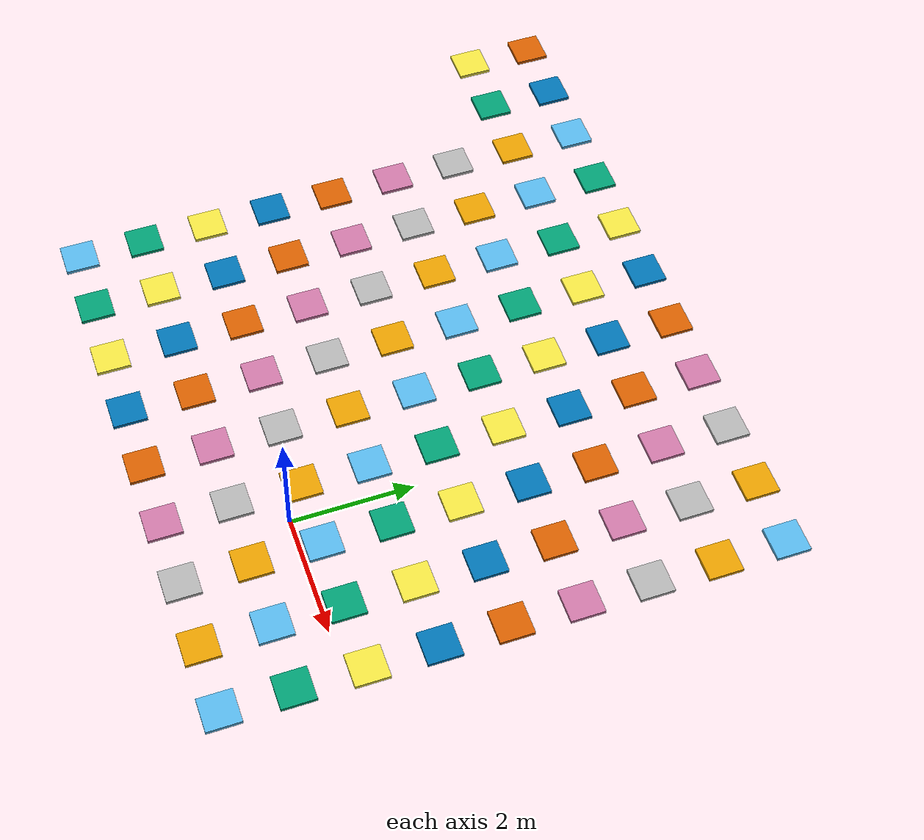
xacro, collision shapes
<?xml version='1.0' encoding='utf-8'?>
<robot xmlns:xacro="http://www.ros.org/wiki/xacro" name="my_awesome_model">
    <xacro:arg name="aruco_dictionary" default="DICT_4X4_100"/>
    <xacro:arg name="aruco_id" default="0"/>
    <xacro:arg name="aruco_name" default="DICT_4X4_100_id0"/>
    <xacro:arg name="aruco_l" default="0.5"/>
    <xacro:arg name="white_border" default="0"/>
    <xacro:include filename="$(find aruco_description)/urdf/general_aruco.xacro"/>
    <xacro:include filename="$(find koghf)/urdf/markers.gazebo.xacro"/>

    <link name="my_awesome_link"/>

    <xacro:generic_aruco aruco_dictionary="$(arg aruco_dictionary)" aruco_id="$(arg aruco_id)" aruco_l="$(arg aruco_l)" aruco_name="$(arg aruco_name)" white_border="$(arg white_border)" connected_to="my_awesome_link">
        <origin xyz="-4 -2 2.5" rpy="0 0 0" />
    </xacro:generic_aruco>
    <xacro:generic_aruco aruco_dictionary="$(arg aruco_dictionary)" aruco_id="1" aruco_l="$(arg aruco_l)" aruco_name="DICT_4X4_100_id1" white_border="$(arg white_border)" connected_to="my_awesome_link">
        <origin xyz="-3 -2 2.5" rpy="0 0 0" />
    </xacro:generic_aruco>
    <xacro:generic_aruco aruco_dictionary="$(arg aruco_dictionary)" aruco_id="2" aruco_l="$(arg aruco_l)" aruco_name="DICT_4X4_100_id2" white_border="$(arg white_border)" connected_to="my_awesome_link">
        <origin xyz="-2 -2 2.5" rpy="0 0 0" />
    </xacro:generic_aruco>
    <xacro:generic_aruco aruco_dictionary="$(arg aruco_dictionary)" aruco_id="3" aruco_l="$(arg aruco_l)" aruco_name="DICT_4X4_100_id3" white_border="$(arg white_border)" connected_to="my_awesome_link">
        <origin xyz="-1 -2 2.5" rpy="0 0 0" />
    </xacro:generic_aruco>
    <xacro:generic_aruco aruco_dictionary="$(arg aruco_dictionary)" aruco_id="4" aruco_l="$(arg aruco_l)" aruco_name="DICT_4X4_100_id4" white_border="$(arg white_border)" connected_to="my_awesome_link">
        <origin xyz="0 -2 2.5" rpy="0 0 0" />
    </xacro:generic_aruco>
    <xacro:generic_aruco aruco_dictionary="$(arg aruco_dictionary)" aruco_id="5" aruco_l="$(arg aruco_l)" aruco_name="DICT_4X4_100_id5" white_border="$(arg white_border)" connected_to="my_awesome_link">
        <origin xyz="1 -2 2.5" rpy="0 0 0" />
    </xacro:generic_aruco>
    <xacro:generic_aruco aruco_dictionary="$(arg aruco_dictionary)" aruco_id="6" aruco_l="$(arg aruco_l)" aruco_name="DICT_4X4_100_id6" white_border="$(arg white_border)" connected_to="my_awesome_link">
        <origin xyz="2 -2 2.5" rpy="0 0 0" />
    </xacro:generic_aruco>
    <xacro:generic_aruco aruco_dictionary="$(arg aruco_dictionary)" aruco_id="7" aruco_l="$(arg aruco_l)" aruco_name="DICT_4X4_100_id7" white_border="$(arg white_border)" connected_to="my_awesome_link">
        <origin xyz="3 -2 2.5" rpy="0 0 0" />
    </xacro:generic_aruco>
    <xacro:generic_aruco aruco_dictionary="$(arg aruco_dictionary)" aruco_id="8" aruco_l="$(arg aruco_l)" aruco_name="DICT_4X4_100_id8" white_border="$(arg white_border)" connected_to="my_awesome_link">
        <origin xyz="4 -2 2.5" rpy="0 0 0" />
    </xacro:generic_aruco>

    <xacro:generic_aruco aruco_dictionary="$(arg aruco_dictionary)" aruco_id="9" aruco_l="$(arg aruco_l)" aruco_name="DICT_4X4_100_id9" white_border="$(arg white_border)" connected_to="my_awesome_link">
        <origin xyz="-4 -1 2.5" rpy="0 0 0" />
    </xacro:generic_aruco>
    <xacro:generic_aruco aruco_dictionary="$(arg aruco_dictionary)" aruco_id="10" aruco_l="$(arg aruco_l)" aruco_name="DICT_4X4_100_id10" white_border="$(arg white_border)" connected_to="my_awesome_link">
        <origin xyz="-3 -1 2.5" rpy="0 0 0" />
    </xacro:generic_aruco>
    <xacro:generic_aruco aruco_dictionary="$(arg aruco_dictionary)" aruco_id="11" aruco_l="$(arg aruco_l)" aruco_name="DICT_4X4_100_id11" white_border="$(arg white_border)" connected_to="my_awesome_link">
        <origin xyz="-2 -1 2.5" rpy="0 0 0" />
    </xacro:generic_aruco>
    <xacro:generic_aruco aruco_dictionary="$(arg aruco_dictionary)" aruco_id="12" aruco_l="$(arg aruco_l)" aruco_name="DICT_4X4_100_id12" white_border="$(arg white_border)" connected_to="my_awesome_link">
        <origin xyz="-1 -1 2.5" rpy="0 0 0" />
    </xacro:generic_aruco>
    <xacro:generic_aruco aruco_dictionary="$(arg aruco_dictionary)" aruco_id="13" aruco_l="$(arg aruco_l)" aruco_name="DICT_4X4_100_id13" white_border="$(arg white_border)" connected_to="my_awesome_link">
        <origin xyz="0 -1 2.5" rpy="0 0 0" />
    </xacro:generic_aruco>
    <xacro:generic_aruco aruco_dictionary="$(arg aruco_dictionary)" aruco_id="14" aruco_l="$(arg aruco_l)" aruco_name="DICT_4X4_100_id14" white_border="$(arg white_border)" connected_to="my_awesome_link">
        <origin xyz="1 -1 2.5" rpy="0 0 0" />
    </xacro:generic_aruco>
    <xacro:generic_aruco aruco_dictionary="$(arg aruco_dictionary)" aruco_id="15" aruco_l="$(arg aruco_l)" aruco_name="DICT_4X4_100_id15" white_border="$(arg white_border)" connected_to="my_awesome_link">
        <origin xyz="2 -1 2.5" rpy="0 0 0" />
    </xacro:generic_aruco>
    <xacro:generic_aruco aruco_dictionary="$(arg aruco_dictionary)" aruco_id="16" aruco_l="$(arg aruco_l)" aruco_name="DICT_4X4_100_id16" white_border="$(arg white_border)" connected_to="my_awesome_link">
        <origin xyz="3 -1 2.5" rpy="0 0 0" />
    </xacro:generic_aruco>
    <xacro:generic_aruco aruco_dictionary="$(arg aruco_dictionary)" aruco_id="17" aruco_l="$(arg aruco_l)" aruco_name="DICT_4X4_100_id17" white_border="$(arg white_border)" connected_to="my_awesome_link">
        <origin xyz="4 -1 2.5" rpy="0 0 0" />
    </xacro:generic_aruco>

    <xacro:generic_aruco aruco_dictionary="$(arg aruco_dictionary)" aruco_id="18" aruco_l="$(arg aruco_l)" aruco_name="DICT_4X4_100_id18" white_border="$(arg white_border)" connected_to="my_awesome_link">
        <origin xyz="-4 0 2.5" rpy="0 0 0" />
    </xacro:generic_aruco>
    <xacro:generic_aruco aruco_dictionary="$(arg aruco_dictionary)" aruco_id="19" aruco_l="$(arg aruco_l)" aruco_name="DICT_4X4_100_id19" white_border="$(arg white_border)" connected_to="my_awesome_link">
        <origin xyz="-3 0 2.5" rpy="0 0 0" />
    </xacro:generic_aruco>
    <xacro:generic_aruco aruco_dictionary="$(arg aruco_dictionary)" aruco_id="20" aruco_l="$(arg aruco_l)" aruco_name="DICT_4X4_100_id20" white_border="$(arg white_border)" connected_to="my_awesome_link">
        <origin xyz="-2 0 2.5" rpy="0 0 0" />
    </xacro:generic_aruco>
    <xacro:generic_aruco aruco_dictionary="$(arg aruco_dictionary)" aruco_id="21" aruco_l="$(arg aruco_l)" aruco_name="DICT_4X4_100_id21" white_border="$(arg white_border)" connected_to="my_awesome_link">
        <origin xyz="-1 0 2.5" rpy="0 0 0" />
    </xacro:generic_aruco>
    <xacro:generic_aruco aruco_dictionary="$(arg aruco_dictionary)" aruco_id="22" aruco_l="$(arg aruco_l)" aruco_name="DICT_4X4_100_id22" white_border="$(arg white_border)" connected_to="my_awesome_link">
        <origin xyz="0 0 2.5" rpy="0 0 0" />
    </xacro:generic_aruco>
    <xacro:generic_aruco aruco_dictionary="$(arg aruco_dictionary)" aruco_id="23" aruco_l="$(arg aruco_l)" aruco_name="DICT_4X4_100_id23" white_border="$(arg white_border)" connected_to="my_awesome_link">
        <origin xyz="1 0 2.5" rpy="0 0 0" />
    </xacro:generic_aruco>
    <xacro:generic_aruco aruco_dictionary="$(arg aruco_dictionary)" aruco_id="24" aruco_l="$(arg aruco_l)" aruco_name="DICT_4X4_100_id24" white_border="$(arg white_border)" connected_to="my_awesome_link">
        <origin xyz="2 0 2.5" rpy="0 0 0" />
    </xacro:generic_aruco>
    <xacro:generic_aruco aruco_dictionary="$(arg aruco_dictionary)" aruco_id="25" aruco_l="$(arg aruco_l)" aruco_name="DICT_4X4_100_id25" white_border="$(arg white_border)" connected_to="my_awesome_link">
        <origin xyz="3 0 2.5" rpy="0 0 0" />
    </xacro:generic_aruco>
    <xacro:generic_aruco aruco_dictionary="$(arg aruco_dictionary)" aruco_id="26" aruco_l="$(arg aruco_l)" aruco_name="DICT_4X4_100_id26" white_border="$(arg white_border)" connected_to="my_awesome_link">
        <origin xyz="4 0 2.5" rpy="0 0 0" />
    </xacro:generic_aruco>

    <xacro:generic_aruco aruco_dictionary="$(arg aruco_dictionary)" aruco_id="27" aruco_l="$(arg aruco_l)" aruco_name="DICT_4X4_100_id27" white_border="$(arg white_border)" connected_to="my_awesome_link">
        <origin xyz="-4 1 2.5" rpy="0 0 0" />
    </xacro:generic_aruco>
    <xacro:generic_aruco aruco_dictionary="$(arg aruco_dictionary)" aruco_id="28" aruco_l="$(arg aruco_l)" aruco_name="DICT_4X4_100_id28" white_border="$(arg white_border)" connected_to="my_awesome_link">
        <origin xyz="-3 1 2.5" rpy="0 0 0" />
    </xacro:generic_aruco>
    <xacro:generic_aruco aruco_dictionary="$(arg aruco_dictionary)" aruco_id="29" aruco_l="$(arg aruco_l)" aruco_name="DICT_4X4_100_id29" white_border="$(arg white_border)" connected_to="my_awesome_link">
        <origin xyz="-2 1 2.5" rpy="0 0 0" />
    </xacro:generic_aruco>
    <xacro:generic_aruco aruco_dictionary="$(arg aruco_dictionary)" aruco_id="30" aruco_l="$(arg aruco_l)" aruco_name="DICT_4X4_100_id30" white_border="$(arg white_border)" connected_to="my_awesome_link">
        <origin xyz="-1 1 2.5" rpy="0 0 0" />
    </xacro:generic_aruco>
    <xacro:generic_aruco aruco_dictionary="$(arg aruco_dictionary)" aruco_id="31" aruco_l="$(arg aruco_l)" aruco_name="DICT_4X4_100_id31" white_border="$(arg white_border)" connected_to="my_awesome_link">
        <origin xyz="0 1 2.5" rpy="0 0 0" />
    </xacro:generic_aruco>
    <xacro:generic_aruco aruco_dictionary="$(arg aruco_dictionary)" aruco_id="32" aruco_l="$(arg aruco_l)" aruco_name="DICT_4X4_100_id32" white_border="$(arg white_border)" connected_to="my_awesome_link">
        <origin xyz="1 1 2.5" rpy="0 0 0" />
    </xacro:generic_aruco>
    <xacro:generic_aruco aruco_dictionary="$(arg aruco_dictionary)" aruco_id="33" aruco_l="$(arg aruco_l)" aruco_name="DICT_4X4_100_id33" white_border="$(arg white_border)" connected_to="my_awesome_link">
        <origin xyz="2 1 2.5" rpy="0 0 0" />
    </xacro:generic_aruco>
    <xacro:generic_aruco aruco_dictionary="$(arg aruco_dictionary)" aruco_id="34" aruco_l="$(arg aruco_l)" aruco_name="DICT_4X4_100_id34" white_border="$(arg white_border)" connected_to="my_awesome_link">
        <origin xyz="3 1 2.5" rpy="0 0 0" />
    </xacro:generic_aruco>
    <xacro:generic_aruco aruco_dictionary="$(arg aruco_dictionary)" aruco_id="35" aruco_l="$(arg aruco_l)" aruco_name="DICT_4X4_100_id35" white_border="$(arg white_border)" connected_to="my_awesome_link">
        <origin xyz="4 1 2.5" rpy="0 0 0" />
    </xacro:generic_aruco>

    <xacro:generic_aruco aruco_dictionary="$(arg aruco_dictionary)" aruco_id="36" aruco_l="$(arg aruco_l)" aruco_name="DICT_4X4_100_id36" white_border="$(arg white_border)" connected_to="my_awesome_link">
        <origin xyz="-4 2 2.5" rpy="0 0 0" />
    </xacro:generic_aruco>
    <xacro:generic_aruco aruco_dictionary="$(arg aruco_dictionary)" aruco_id="37" aruco_l="$(arg aruco_l)" aruco_name="DICT_4X4_100_id37" white_border="$(arg white_border)" connected_to="my_awesome_link">
        <origin xyz="-3 2 2.5" rpy="0 0 0" />
    </xacro:generic_aruco>
    <xacro:generic_aruco aruco_dictionary="$(arg aruco_dictionary)" aruco_id="38" aruco_l="$(arg aruco_l)" aruco_name="DICT_4X4_100_id38" white_border="$(arg white_border)" connected_to="my_awesome_link">
        <origin xyz="-2 2 2.5" rpy="0 0 0" />
    </xacro:generic_aruco>
    <xacro:generic_aruco aruco_dictionary="$(arg aruco_dictionary)" aruco_id="39" aruco_l="$(arg aruco_l)" aruco_name="DICT_4X4_100_id39" white_border="$(arg white_border)" connected_to="my_awesome_link">
        <origin xyz="-1 2 2.5" rpy="0 0 0" />
    </xacro:generic_aruco>
    <xacro:generic_aruco aruco_dictionary="$(arg aruco_dictionary)" aruco_id="40" aruco_l="$(arg aruco_l)" aruco_name="DICT_4X4_100_id40" white_border="$(arg white_border)" connected_to="my_awesome_link">
        <origin xyz="0 2 2.5" rpy="0 0 0" />
    </xacro:generic_aruco>
    <xacro:generic_aruco aruco_dictionary="$(arg aruco_dictionary)" aruco_id="41" aruco_l="$(arg aruco_l)" aruco_name="DICT_4X4_100_id41" white_border="$(arg white_border)" connected_to="my_awesome_link">
        <origin xyz="1 2 2.5" rpy="0 0 0" />
    </xacro:generic_aruco>
    <xacro:generic_aruco aruco_dictionary="$(arg aruco_dictionary)" aruco_id="42" aruco_l="$(arg aruco_l)" aruco_name="DICT_4X4_100_id42" white_border="$(arg white_border)" connected_to="my_awesome_link">
        <origin xyz="2 2 2.5" rpy="0 0 0" />
    </xacro:generic_aruco>
    <xacro:generic_aruco aruco_dictionary="$(arg aruco_dictionary)" aruco_id="43" aruco_l="$(arg aruco_l)" aruco_name="DICT_4X4_100_id43" white_border="$(arg white_border)" connected_to="my_awesome_link">
        <origin xyz="3 2 2.5" rpy="0 0 0" />
    </xacro:generic_aruco>
    <xacro:generic_aruco aruco_dictionary="$(arg aruco_dictionary)" aruco_id="44" aruco_l="$(arg aruco_l)" aruco_name="DICT_4X4_100_id44" white_border="$(arg white_border)" connected_to="my_awesome_link">
        <origin xyz="4 2 2.5" rpy="0 0 0" />
    </xacro:generic_aruco>

    <xacro:generic_aruco aruco_dictionary="$(arg aruco_dictionary)" aruco_id="45" aruco_l="$(arg aruco_l)" aruco_name="DICT_4X4_100_id45" white_border="$(arg white_border)" connected_to="my_awesome_link">
        <origin xyz="-4 3 2.5" rpy="0 0 0" />
    </xacro:generic_aruco>
    <xacro:generic_aruco aruco_dictionary="$(arg aruco_dictionary)" aruco_id="46" aruco_l="$(arg aruco_l)" aruco_name="DICT_4X4_100_id46" white_border="$(arg white_border)" connected_to="my_awesome_link">
        <origin xyz="-3 3 2.5" rpy="0 0 0" />
    </xacro:generic_aruco>
    <xacro:generic_aruco aruco_dictionary="$(arg aruco_dictionary)" aruco_id="47" aruco_l="$(arg aruco_l)" aruco_name="DICT_4X4_100_id47" white_border="$(arg white_border)" connected_to="my_awesome_link">
        <origin xyz="-2 3 2.5" rpy="0 0 0" />
    </xacro:generic_aruco>
    <xacro:generic_aruco aruco_dictionary="$(arg aruco_dictionary)" aruco_id="48" aruco_l="$(arg aruco_l)" aruco_name="DICT_4X4_100_id48" white_border="$(arg white_border)" connected_to="my_awesome_link">
        <origin xyz="-1 3 2.5" rpy="0 0 0" />
    </xacro:generic_aruco>
    <xacro:generic_aruco aruco_dictionary="$(arg aruco_dictionary)" aruco_id="49" aruco_l="$(arg aruco_l)" aruco_name="DICT_4X4_100_id49" white_border="$(arg white_border)" connected_to="my_awesome_link">
        <origin xyz="0 3 2.5" rpy="0 0 0" />
    </xacro:generic_aruco>
    <xacro:generic_aruco aruco_dictionary="$(arg aruco_dictionary)" aruco_id="50" aruco_l="$(arg aruco_l)" aruco_name="DICT_4X4_100_id50" white_border="$(arg white_border)" connected_to="my_awesome_link">
        <origin xyz="1 3 2.5" rpy="0 0 0" />
    </xacro:generic_aruco>
    <xacro:generic_aruco aruco_dictionary="$(arg aruco_dictionary)" aruco_id="51" aruco_l="$(arg aruco_l)" aruco_name="DICT_4X4_100_id51" white_border="$(arg white_border)" connected_to="my_awesome_link">
        <origin xyz="2 3 2.5" rpy="0 0 0" />
    </xacro:generic_aruco>
    <xacro:generic_aruco aruco_dictionary="$(arg aruco_dictionary)" aruco_id="52" aruco_l="$(arg aruco_l)" aruco_name="DICT_4X4_100_id52" white_border="$(arg white_border)" connected_to="my_awesome_link">
        <origin xyz="3 3 2.5" rpy="0 0 0" />
    </xacro:generic_aruco>
    <xacro:generic_aruco aruco_dictionary="$(arg aruco_dictionary)" aruco_id="53" aruco_l="$(arg aruco_l)" aruco_name="DICT_4X4_100_id53" white_border="$(arg white_border)" connected_to="my_awesome_link">
        <origin xyz="4 3 2.5" rpy="0 0 0" />
    </xacro:generic_aruco>

    <xacro:generic_aruco aruco_dictionary="$(arg aruco_dictionary)" aruco_id="54" aruco_l="$(arg aruco_l)" aruco_name="DICT_4X4_100_id54" white_border="$(arg white_border)" connected_to="my_awesome_link">
        <origin xyz="-4 4 2.5" rpy="0 0 0" />
    </xacro:generic_aruco>
    <xacro:generic_aruco aruco_dictionary="$(arg aruco_dictionary)" aruco_id="55" aruco_l="$(arg aruco_l)" aruco_name="DICT_4X4_100_id55" white_border="$(arg white_border)" connected_to="my_awesome_link">
        <origin xyz="-3 4 2.5" rpy="0 0 0" />
    </xacro:generic_aruco>
    <xacro:generic_aruco aruco_dictionary="$(arg aruco_dictionary)" aruco_id="56" aruco_l="$(arg aruco_l)" aruco_name="DICT_4X4_100_id56" white_border="$(arg white_border)" connected_to="my_awesome_link">
        <origin xyz="-2 4 2.5" rpy="0 0 0" />
    </xacro:generic_aruco>
    <xacro:generic_aruco aruco_dictionary="$(arg aruco_dictionary)" aruco_id="57" aruco_l="$(arg aruco_l)" aruco_name="DICT_4X4_100_id57" white_border="$(arg white_border)" connected_to="my_awesome_link">
        <origin xyz="-1 4 2.5" rpy="0 0 0" />
    </xacro:generic_aruco>
    <xacro:generic_aruco aruco_dictionary="$(arg aruco_dictionary)" aruco_id="58" aruco_l="$(arg aruco_l)" aruco_name="DICT_4X4_100_id58" white_border="$(arg white_border)" connected_to="my_awesome_link">
        <origin xyz="0 4 2.5" rpy="0 0 0" />
    </xacro:generic_aruco>
    <xacro:generic_aruco aruco_dictionary="$(arg aruco_dictionary)" aruco_id="59" aruco_l="$(arg aruco_l)" aruco_name="DICT_4X4_100_id59" white_border="$(arg white_border)" connected_to="my_awesome_link">
        <origin xyz="1 4 2.5" rpy="0 0 0" />
    </xacro:generic_aruco>
    <xacro:generic_aruco aruco_dictionary="$(arg aruco_dictionary)" aruco_id="60" aruco_l="$(arg aruco_l)" aruco_name="DICT_4X4_100_id60" white_border="$(arg white_border)" connected_to="my_awesome_link">
        <origin xyz="2 4 2.5" rpy="0 0 0" />
    </xacro:generic_aruco>
    <xacro:generic_aruco aruco_dictionary="$(arg aruco_dictionary)" aruco_id="61" aruco_l="$(arg aruco_l)" aruco_name="DICT_4X4_100_id61" white_border="$(arg white_border)" connected_to="my_awesome_link">
        <origin xyz="3 4 2.5" rpy="0 0 0" />
    </xacro:generic_aruco>
    <xacro:generic_aruco aruco_dictionary="$(arg aruco_dictionary)" aruco_id="62" aruco_l="$(arg aruco_l)" aruco_name="DICT_4X4_100_id62" white_border="$(arg white_border)" connected_to="my_awesome_link">
        <origin xyz="4 4 2.5" rpy="0 0 0" />
    </xacro:generic_aruco>

    <xacro:generic_aruco aruco_dictionary="$(arg aruco_dictionary)" aruco_id="63" aruco_l="$(arg aruco_l)" aruco_name="DICT_4X4_100_id63" white_border="$(arg white_border)" connected_to="my_awesome_link">
        <origin xyz="-4 5 2.5" rpy="0 0 0" />
    </xacro:generic_aruco>
    <xacro:generic_aruco aruco_dictionary="$(arg aruco_dictionary)" aruco_id="64" aruco_l="$(arg aruco_l)" aruco_name="DICT_4X4_100_id64" white_border="$(arg white_border)" connected_to="my_awesome_link">
        <origin xyz="-3 5 2.5" rpy="0 0 0" />
    </xacro:generic_aruco>
    <xacro:generic_aruco aruco_dictionary="$(arg aruco_dictionary)" aruco_id="65" aruco_l="$(arg aruco_l)" aruco_name="DICT_4X4_100_id65" white_border="$(arg white_border)" connected_to="my_awesome_link">
        <origin xyz="-2 5 2.5" rpy="0 0 0" />
    </xacro:generic_aruco>
    <xacro:generic_aruco aruco_dictionary="$(arg aruco_dictionary)" aruco_id="66" aruco_l="$(arg aruco_l)" aruco_name="DICT_4X4_100_id66" white_border="$(arg white_border)" connected_to="my_awesome_link">
        <origin xyz="-1 5 2.5" rpy="0 0 0" />
    </xacro:generic_aruco>
    <xacro:generic_aruco aruco_dictionary="$(arg aruco_dictionary)" aruco_id="67" aruco_l="$(arg aruco_l)" aruco_name="DICT_4X4_100_id67" white_border="$(arg white_border)" connected_to="my_awesome_link">
        <origin xyz="0 5 2.5" rpy="0 0 0" />
    </xacro:generic_aruco>
    <xacro:generic_aruco aruco_dictionary="$(arg aruco_dictionary)" aruco_id="68" aruco_l="$(arg aruco_l)" aruco_name="DICT_4X4_100_id68" white_border="$(arg white_border)" connected_to="my_awesome_link">
        <origin xyz="1 5 2.5" rpy="0 0 0" />
    </xacro:generic_aruco>
    <xacro:generic_aruco aruco_dictionary="$(arg aruco_dictionary)" aruco_id="69" aruco_l="$(arg aruco_l)" aruco_name="DICT_4X4_100_id69" white_border="$(arg white_border)" connected_to="my_awesome_link">
        <origin xyz="2 5 2.5" rpy="0 0 0" />
    </xacro:generic_aruco>
    <xacro:generic_aruco aruco_dictionary="$(arg aruco_dictionary)" aruco_id="70" aruco_l="$(arg aruco_l)" aruco_name="DICT_4X4_100_id70" white_border="$(arg white_border)" connected_to="my_awesome_link">
        <origin xyz="3 5 2.5" rpy="0 0 0" />
    </xacro:generic_aruco>
    <xacro:generic_aruco aruco_dictionary="$(arg aruco_dictionary)" aruco_id="71" aruco_l="$(arg aruco_l)" aruco_name="DICT_4X4_100_id71" white_border="$(arg white_border)" connected_to="my_awesome_link">
        <origin xyz="4 5 2.5" rpy="0 0 0" />
    </xacro:generic_aruco>

    <xacro:generic_aruco aruco_dictionary="$(arg aruco_dictionary)" aruco_id="72" aruco_l="$(arg aruco_l)" aruco_name="DICT_4X4_100_id72" white_border="$(arg white_border)" connected_to="my_awesome_link">
        <origin xyz="-4 6 2.5" rpy="0 0 0" />
    </xacro:generic_aruco>
    <xacro:generic_aruco aruco_dictionary="$(arg aruco_dictionary)" aruco_id="73" aruco_l="$(arg aruco_l)" aruco_name="DICT_4X4_100_id73" white_border="$(arg white_border)" connected_to="my_awesome_link">
        <origin xyz="-3 6 2.5" rpy="0 0 0" />
    </xacro:generic_aruco>
    <xacro:generic_aruco aruco_dictionary="$(arg aruco_dictionary)" aruco_id="74" aruco_l="$(arg aruco_l)" aruco_name="DICT_4X4_100_id74" white_border="$(arg white_border)" connected_to="my_awesome_link">
        <origin xyz="-2 6 2.5" rpy="0 0 0" />
    </xacro:generic_aruco>
    <xacro:generic_aruco aruco_dictionary="$(arg aruco_dictionary)" aruco_id="75" aruco_l="$(arg aruco_l)" aruco_name="DICT_4X4_100_id75" white_border="$(arg white_border)" connected_to="my_awesome_link">
        <origin xyz="-1 6 2.5" rpy="0 0 0" />
    </xacro:generic_aruco>
    <xacro:generic_aruco aruco_dictionary="$(arg aruco_dictionary)" aruco_id="76" aruco_l="$(arg aruco_l)" aruco_name="DICT_4X4_100_id76" white_border="$(arg white_border)" connected_to="my_awesome_link">
        <origin xyz="0 6 2.5" rpy="0 0 0" />
    </xacro:generic_aruco>
    <xacro:generic_aruco aruco_dictionary="$(arg aruco_dictionary)" aruco_id="77" aruco_l="$(arg aruco_l)" aruco_name="DICT_4X4_100_id77" white_border="$(arg white_border)" connected_to="my_awesome_link">
        <origin xyz="1 6 2.5" rpy="0 0 0" />
    </xacro:generic_aruco>
    <xacro:generic_aruco aruco_dictionary="$(arg aruco_dictionary)" aruco_id="78" aruco_l="$(arg aruco_l)" aruco_name="DICT_4X4_100_id78" white_border="$(arg white_border)" connected_to="my_awesome_link">
        <origin xyz="2 6 2.5" rpy="0 0 0" />
    </xacro:generic_aruco>
    <xacro:generic_aruco aruco_dictionary="$(arg aruco_dictionary)" aruco_id="79" aruco_l="$(arg aruco_l)" aruco_name="DICT_4X4_100_id79" white_border="$(arg white_border)" connected_to="my_awesome_link">
        <origin xyz="3 6 2.5" rpy="0 0 0" />
    </xacro:generic_aruco>
    <xacro:generic_aruco aruco_dictionary="$(arg aruco_dictionary)" aruco_id="80" aruco_l="$(arg aruco_l)" aruco_name="DICT_4X4_100_id80" white_border="$(arg white_border)" connected_to="my_awesome_link">
        <origin xyz="4 6 2.5" rpy="0 0 0" />
    </xacro:generic_aruco>

    <xacro:generic_aruco aruco_dictionary="$(arg aruco_dictionary)" aruco_id="81" aruco_l="$(arg aruco_l)" aruco_name="DICT_4X4_100_id81" white_border="$(arg white_border)" connected_to="my_awesome_link">
        <origin xyz="-5 5 2.5" rpy="0 0 0" />
    </xacro:generic_aruco>
    <xacro:generic_aruco aruco_dictionary="$(arg aruco_dictionary)" aruco_id="82" aruco_l="$(arg aruco_l)" aruco_name="DICT_4X4_100_id82" white_border="$(arg white_border)" connected_to="my_awesome_link">
        <origin xyz="-6 5 2.5" rpy="0 0 0" />
    </xacro:generic_aruco>
    <xacro:generic_aruco aruco_dictionary="$(arg aruco_dictionary)" aruco_id="83" aruco_l="$(arg aruco_l)" aruco_name="DICT_4X4_100_id83" white_border="$(arg white_border)" connected_to="my_awesome_link">
        <origin xyz="-5 6 2.5" rpy="0 0 0" />
    </xacro:generic_aruco>
    <xacro:generic_aruco aruco_dictionary="$(arg aruco_dictionary)" aruco_id="84" aruco_l="$(arg aruco_l)" aruco_name="DICT_4X4_100_id84" white_border="$(arg white_border)" connected_to="my_awesome_link">
        <origin xyz="-6 6 2.5" rpy="0 0 0" />
    </xacro:generic_aruco>

</robot>

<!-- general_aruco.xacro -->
<robot xmlns:xacro="http://www.ros.org/wiki/xacro" name="generic_aruco">
  <!-- connected_to: if given the model will be connected to it -->
  <!-- aruco_l: is the x and y dimension of the black core of the code -->
  <!-- aruco_name: The link are called after this name e.g.: ${aruco_name}_link_0. -->
  <!-- 2*white_border: dimension of the white border around the marker in %. -->
  <xacro:macro name="generic_aruco" params="connected_to:='' aruco_name aruco_dictionary aruco_id aruco_l white_border *origin">
    <!-- HardwareInterface:='EffortJointInterface' -->
    <xacro:unless value="${not connected_to}">
      <joint name="${aruco_name}_joint_${connected_to}" type="fixed">
        <parent link="${connected_to}"/>
        <child link="${aruco_name}_link_0"/>
        <xacro:insert_block name="origin"/>
      </joint>
    </xacro:unless>

    <!-- LINK 0 -->
    <link name="${aruco_name}_link_0">
      <inertial>
        <origin xyz="0 0 0" rpy="0 0 0"/>
        <mass value="1.0" />
        <inertia ixx="0.0741666666667" ixy="0.0" ixz="0.0" iyy="0.0585416666667" iyz="0.0" izz="0.0260416666667"/>
      </inertial>
      <collision>
        <origin xyz="0 0 0" rpy="0 0 0"/>
        <geometry>
          <box size="${aruco_l + 2*white_border * aruco_l} ${aruco_l + 2*white_border * aruco_l} ${0.01 * aruco_l/0.09}"/>
        </geometry>
      </collision>
      <visual>
        <origin xyz="0 0 0" rpy="0 0 0"/>
        <geometry>
          <box size="${aruco_l + 2*white_border * aruco_l} ${aruco_l + 2*white_border * aruco_l} ${0.01 * aruco_l/0.09}"/>
        </geometry>
      </visual>
      <visual>
        <origin rpy="0.0 0 0" xyz="0 0 0"/>
        <geometry>
          <mesh filename="package://aruco_description/meshes/${aruco_dictionary}/${aruco_dictionary}_id${aruco_id}.dae" scale="${aruco_l/0.09} ${aruco_l/0.09} ${aruco_l/0.09}"/>
        </geometry>
      </visual>
    </link>

    <gazebo reference="${aruco_name}_link_0">
      <kp>100000.0</kp>
      <kd>100000.0</kd>
      <mu1>0.1</mu1>
      <mu2>0.1</mu2>
      <fdir1>1 0 0</fdir1>
    </gazebo>
  </xacro:macro>
</robot>
